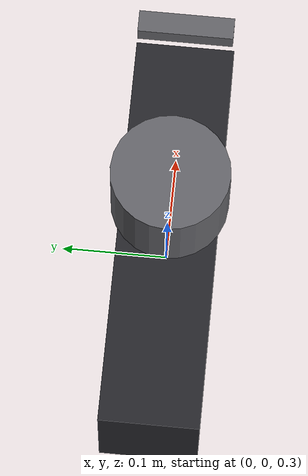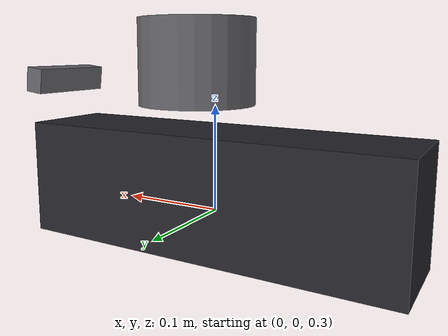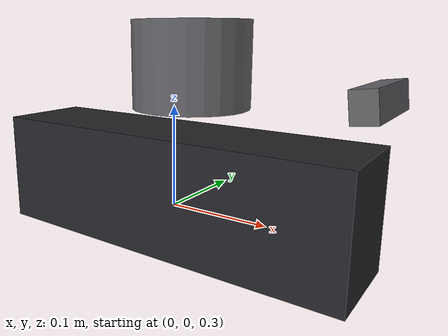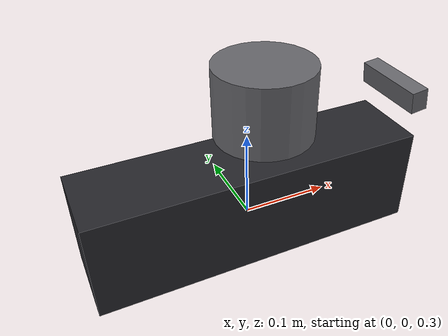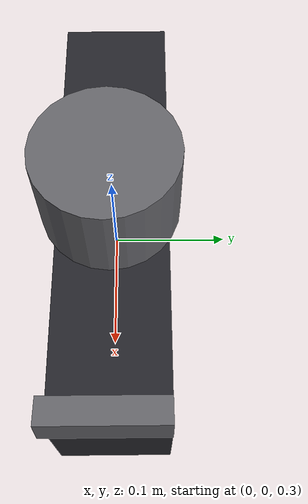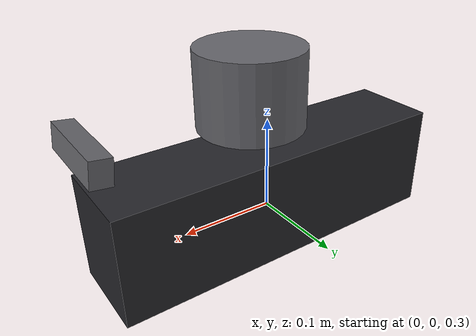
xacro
<?xml version="1.0"?>
<robot name="go2" xmlns:xacro="http://www.ros.org/wiki/xacro">

  <!-- Trunk geometry, from the Go2 datasheet (metres). -->
  <xacro:property name="trunk_x"  value="0.3762"/>
  <xacro:property name="trunk_y"  value="0.0935"/>
  <xacro:property name="trunk_z"  value="0.114"/>
  <xacro:property name="stand_h"  value="0.32"/>   <!-- trunk height when standing -->
  <xacro:property name="trunk_m"  value="6.921"/>

  <xacro:arg name="lidar_beams"   default="16"/>
  <xacro:arg name="lidar_samples" default="440"/>
  <xacro:arg name="lidar_rate"    default="5.0"/>

  <xacro:arg name="publish_odom_tf" default="false"/>

  <material name="go2_body"><color rgba="0.15 0.15 0.17 1.0"/></material>
  <material name="sensor_grey"><color rgba="0.4 0.4 0.42 1.0"/></material>

  <!-- ===================== base ===================== -->
  <link name="base_footprint"/>

  <link name="base_link">
    <visual>
      <geometry><box size="${trunk_x} ${trunk_y} ${trunk_z}"/></geometry>
      <material name="go2_body"/>
    </visual>
    <collision>
      <geometry><box size="${trunk_x} ${trunk_y} ${trunk_z}"/></geometry>
    </collision>
    <inertial>
      <mass value="${trunk_m}"/>
      <inertia ixx="0.0158" ixy="0.0" ixz="0.0"
               iyy="0.0377" iyz="0.0" izz="0.0456"/>
    </inertial>
  </link>

  <joint name="base_footprint_joint" type="fixed">
    <parent link="base_footprint"/>
    <child  link="base_link"/>
    <origin xyz="0 0 ${stand_h}" rpy="0 0 0"/>
  </joint>

  <!-- ===================== LiDAR ===================== -->
  <link name="lidar_link">
    <visual>
      <geometry><cylinder radius="0.055" length="0.08"/></geometry>
      <material name="sensor_grey"/>
    </visual>
    <collision>
      <geometry><cylinder radius="0.055" length="0.08"/></geometry>
    </collision>
    <inertial>
      <mass value="0.85"/>
      <inertia ixx="0.001" ixy="0" ixz="0" iyy="0.001" iyz="0" izz="0.001"/>
    </inertial>
  </link>

  <joint name="lidar_joint" type="fixed">
    <parent link="base_link"/>
    <child  link="lidar_link"/>
    <origin xyz="0.02 0 0.12" rpy="0 0 0"/>
  </joint>

  <!-- ===================== RGB-D camera ===================== -->
  <link name="camera_link">
    <visual>
      <geometry><box size="0.02 0.09 0.025"/></geometry>
      <material name="sensor_grey"/>
    </visual>
    <inertial>
      <mass value="0.07"/>
      <inertia ixx="1e-4" ixy="0" ixz="0" iyy="1e-4" iyz="0" izz="1e-4"/>
    </inertial>
  </link>

  <xacro:arg name="camera_pitch" default="-0.12"/>

  <joint name="camera_joint" type="fixed">
    <parent link="base_link"/>
    <child  link="camera_link"/>
    <origin xyz="${trunk_x/2} 0 0.10" rpy="0 $(arg camera_pitch) 0"/>
  </joint>

  <!-- REP-103 optical frame: z forward, x right, y down. RTAB-Map expects the
       camera's image data to be expressed in this frame, not in camera_link. -->
  <link name="camera_optical_frame"/>
  <joint name="camera_optical_joint" type="fixed">
    <parent link="camera_link"/>
    <child  link="camera_optical_frame"/>
    <origin xyz="0 0 0" rpy="${-pi/2} 0 ${-pi/2}"/>
  </joint>

  <!-- ===================== IMU ===================== -->
  <link name="imu_link">
    <inertial>
      <mass value="0.01"/>
      <inertia ixx="1e-6" ixy="0" ixz="0" iyy="1e-6" iyz="0" izz="1e-6"/>
    </inertial>
  </link>
  <joint name="imu_joint" type="fixed">
    <parent link="base_link"/>
    <child  link="imu_link"/>
    <origin xyz="0 0 0" rpy="0 0 0"/>
  </joint>

  <!-- ===================== Gazebo materials ===================== -->
  <gazebo reference="base_link"><material>Gazebo/DarkGrey</material></gazebo>
  <gazebo reference="lidar_link"><material>Gazebo/Grey</material></gazebo>
  <gazebo reference="camera_link"><material>Gazebo/Blue</material></gazebo>

  <!-- ===================== LiDAR plugin =====================
       CPU ray sensor (not gpu_ray): WSL here has no GPU. Vertical FOV matches
       the Helios-32's -55 to +15 degrees. -->
  <gazebo reference="lidar_link">
    <sensor type="ray" name="helios32">
      <pose>0 0 0 0 0 0</pose>
      <visualize>false</visualize>
      <update_rate>$(arg lidar_rate)</update_rate>
      <ray>
        <scan>
          <horizontal>
            <samples>$(arg lidar_samples)</samples>
            <resolution>1</resolution>
            <min_angle>-3.14159</min_angle>
            <max_angle>3.14159</max_angle>
          </horizontal>
          <vertical>
            <samples>$(arg lidar_beams)</samples>
            <resolution>1</resolution>
            <min_angle>-0.9599</min_angle>   <!-- -55 deg -->
            <max_angle>0.2618</max_angle>    <!-- +15 deg -->
          </vertical>
        </scan>
        <range>
          <min>0.20</min>
          <max>30.0</max>
          <resolution>0.01</resolution>
        </range>
        <noise>
          <type>gaussian</type>
          <mean>0.0</mean>
          <stddev>0.008</stddev>
        </noise>
      </ray>
      <plugin name="helios32_controller" filename="libgazebo_ros_ray_sensor.so">
        <ros>
          <namespace>/</namespace>
          <remapping>~/out:=/rslidar_points</remapping>
        </ros>
        <output_type>sensor_msgs/PointCloud2</output_type>
        <frame_name>lidar_link</frame_name>
      </plugin>
    </sensor>
  </gazebo>

  <!-- ===================== RGB-D camera plugin ===================== -->
  <gazebo reference="camera_link">
    <sensor type="depth" name="rgbd_camera">
      <always_on>true</always_on>
      <update_rate>10.0</update_rate>
      <camera name="rgbd">
        <horizontal_fov>1.5184</horizontal_fov>  <!-- 87 deg, D435-class -->
        <image>
          <width>640</width>
          <height>480</height>
          <format>R8G8B8</format>
        </image>
        <clip>
          <near>0.10</near>
          <far>10.0</far>
        </clip>
        <noise>
          <type>gaussian</type>
          <mean>0.0</mean>
          <stddev>0.005</stddev>
        </noise>
      </camera>
      <plugin name="rgbd_camera_controller" filename="libgazebo_ros_camera.so">
        <ros><namespace>/camera</namespace></ros>
        <camera_name>color</camera_name>
        <frame_name>camera_optical_frame</frame_name>
        <hack_baseline>0.07</hack_baseline>
        <min_depth>0.10</min_depth>
        <max_depth>10.0</max_depth>
      </plugin>
    </sensor>
  </gazebo>

  <!-- ===================== IMU plugin ===================== -->
  <gazebo reference="imu_link">
    <sensor name="go2_imu" type="imu">
      <always_on>true</always_on>
      <update_rate>100.0</update_rate>
      <plugin name="imu_controller" filename="libgazebo_ros_imu_sensor.so">
        <ros>
          <namespace>/</namespace>
          <remapping>~/out:=/imu/data</remapping>
        </ros>
        <frame_name>imu_link</frame_name>
      </plugin>
    </sensor>
  </gazebo>

  <gazebo>
    <plugin name="planar_move" filename="libgazebo_ros_planar_move.so">
      <ros><namespace>/</namespace></ros>
      <!-- Fed by cmd_vel_bridge, not by Nav2 directly, so that the watchdog and
           velocity clamps of the real go2_cmd_processor sit in the loop here
           exactly as they do on hardware. -->
      <command_topic>cmd_vel_sim</command_topic>
      <odometry_topic>odom</odometry_topic>
      <odometry_frame>odom</odometry_frame>
      <robot_base_frame>base_footprint</robot_base_frame>
      <odometry_rate>30.0</odometry_rate>
      <publish_odom>true</publish_odom>
      <publish_odom_tf>$(arg publish_odom_tf)</publish_odom_tf>
      <!-- Wheel-odometry-like drift so SLAM has something real to correct. -->
      <covariance_x>0.0002</covariance_x>
      <covariance_y>0.0002</covariance_y>
      <covariance_yaw>0.0100</covariance_yaw>
    </plugin>
  </gazebo>

</robot>
